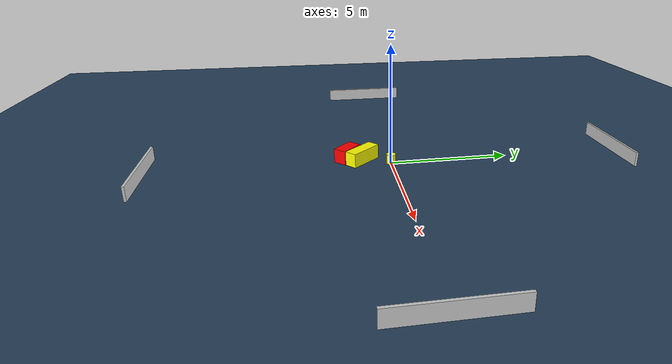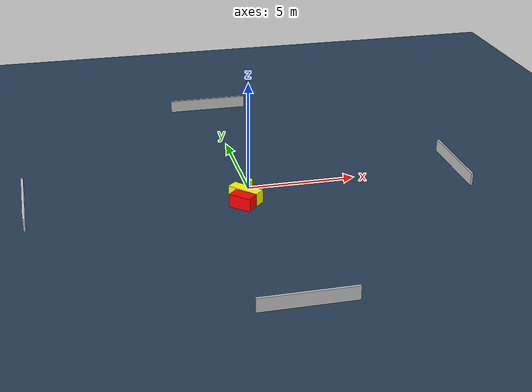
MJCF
<?xml version="1.0" ?>
<mujoco model="generated_environment">
  <option timestep="0.01" integrator="RK4" cone="elliptic"/>
  <default>
    <geom density="1"/>
  </default>
  <asset>
    <texture builtin="gradient" height="3072" name="skybox" rgb1="0.3 0.5 0.7" rgb2="0 0 0" type="skybox" width="512"/>
    <texture builtin="checker" height="300" name="groundplane" rgb1="0.2 0.3 0.4" rgb2="0.1 0.2 0.3" type="2d" width="300"/>
    <material name="groundplane" reflectance="0.2" texrepeat="5 5" texture="groundplane"/>
  </asset>
  <worldbody>
    <light dir="0 0 -1" directional="true" pos="0 0 1.5"/>
    <geom condim="3" friction="0.5 0.005 0.001" material="groundplane" name="floor" pos="0 0 0" size="0 0 0.05" type="plane"/>
    <body name="walls">
      <geom name="wall_1" condim="4" pos="-10.0 0.0 0.3" rgba="0.800000011920929 0.800000011920929 0.800000011920929 1.0" size="0.05 2.0 0.3" type="box"/>
      <geom name="wall_2" condim="4" pos="10.0 0.0 0.3" rgba="0.800000011920929 0.800000011920929 0.800000011920929 1.0" size="0.05 2.0 0.3" type="box"/>
      <geom name="wall_3" condim="4" pos="0.0 -10.0 0.3" rgba="0.800000011920929 0.800000011920929 0.800000011920929 1.0" size="2.0 0.05 0.3" type="box"/>
      <geom name="wall_4" condim="4" pos="0.0 10.0 0.3" rgba="0.800000011920929 0.800000011920929 0.800000011920929 1.0" size="2.0 0.05 0.3" type="box"/>
    </body>
    <body name="robot">
      <joint name="joint_x" type="slide" pos="0 0 0" axis="1 0 0"/>
      <joint name="joint_y" type="slide" pos="0 0 0" axis="0 1 0"/>
      <geom name="robot" type="cylinder" pos="0.0 0.0 0.2" size="0.2 0.2 0.0" mass="5.0" friction="1.0 0.005 0.0001" condim="4" rgba="1.0 1.0 0.0 1.0"/>
    </body>
    <body name="obstacle_1_movable">
      <geom name="obstacle_1_movable" condim="4" pos="-0.38054596805809177 -1.1759502980498533 0.3" euler="0 0 42.77153294405747" friction="0.0 0.005 0.001" rgba="1.0 1.0 0.0 1.0" size="0.26381572199755143 0.7477937416524725 0.3" type="box" mass="0.1"/>
      <joint type="free"/>
    </body>
    <body name="obstacle_2_static">
      <geom name="obstacle_2_static" condim="4" pos="-0.6456802402446535 -1.788101593835681 0.3" euler="0 0 227.0965978082048" friction="0.0 0.005 0.001" rgba="1.0 0.0 0.0 1.0" size="0.28861121680227325 0.5227683034296424 0.3" type="box"/>
    </body>
  </worldbody>
  <actuator>
    <motor name="actuator_x" joint="joint_x" gear="1" ctrlrange="-1 1"/>
    <motor name="actuator_y" joint="joint_y" gear="1" ctrlrange="-1 1"/>
  </actuator>
</mujoco>
